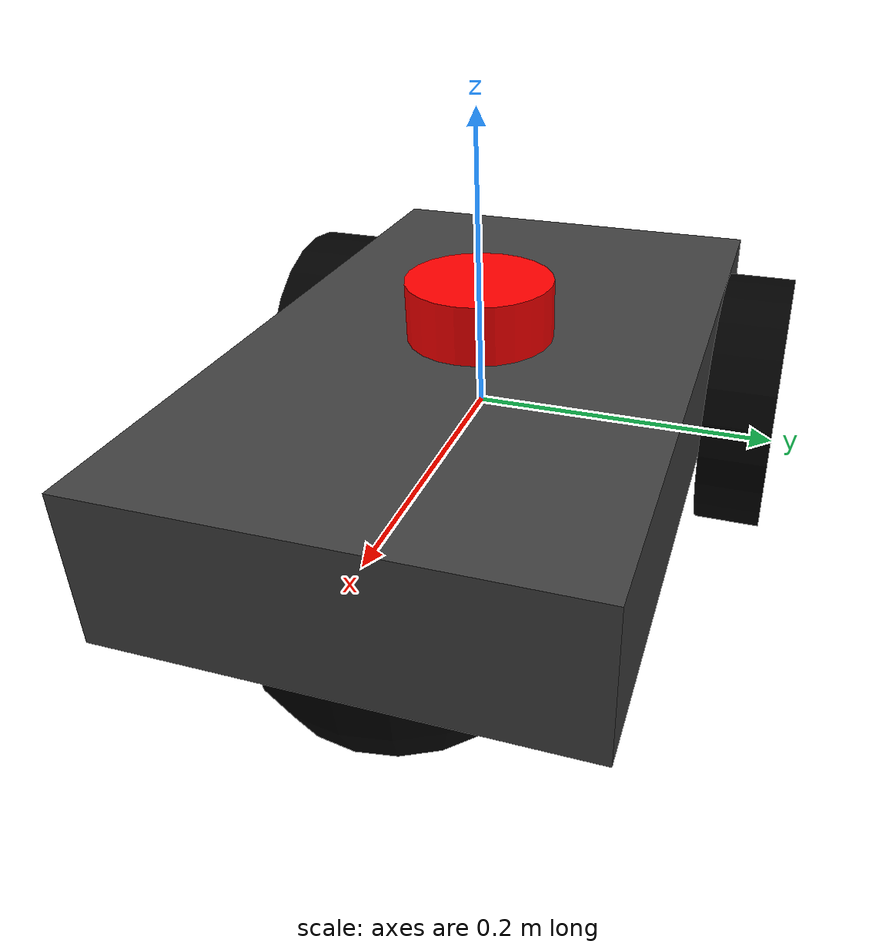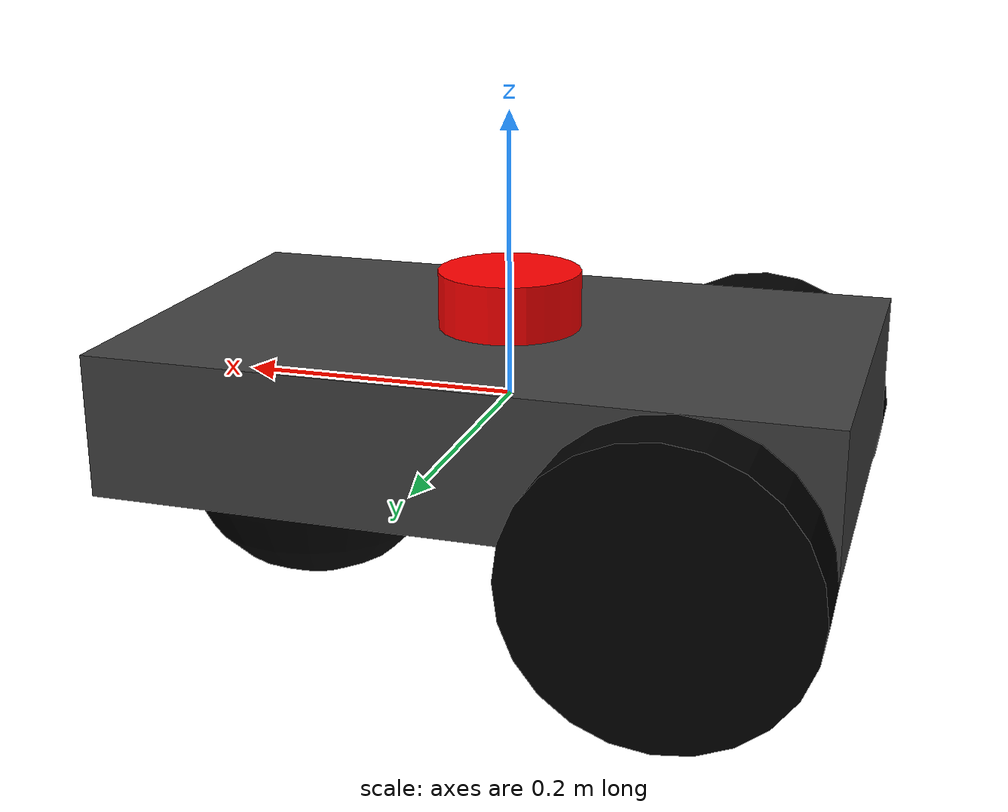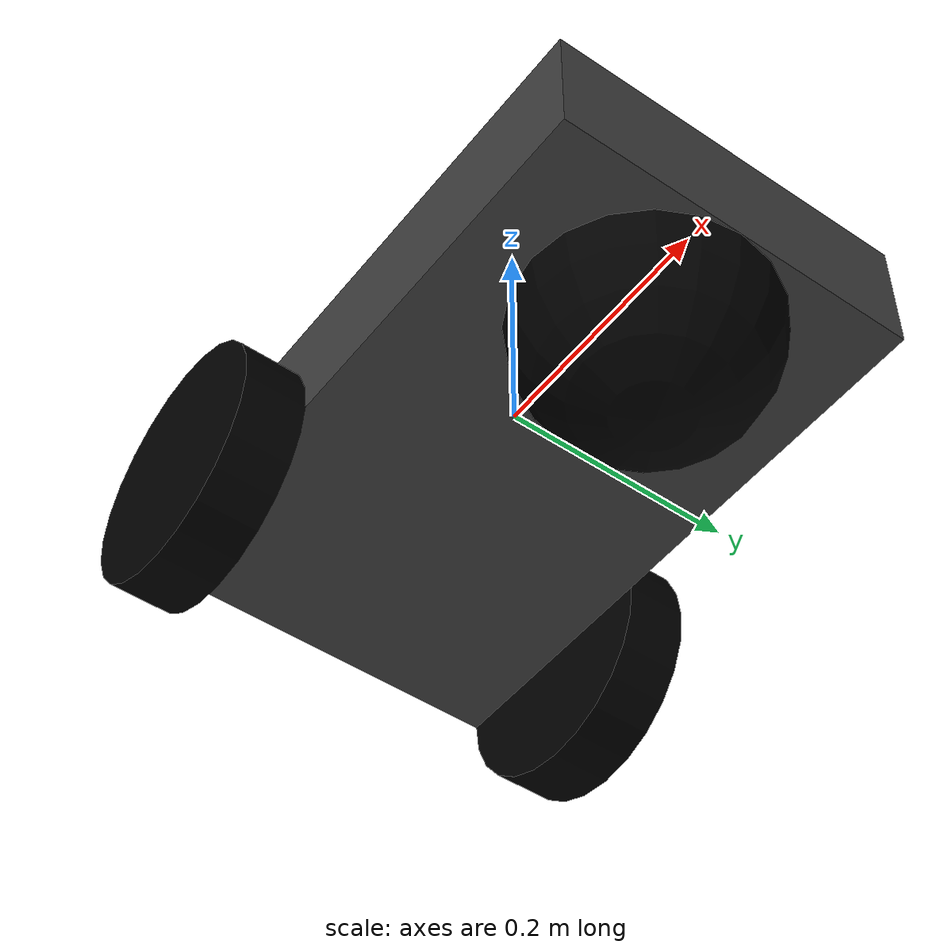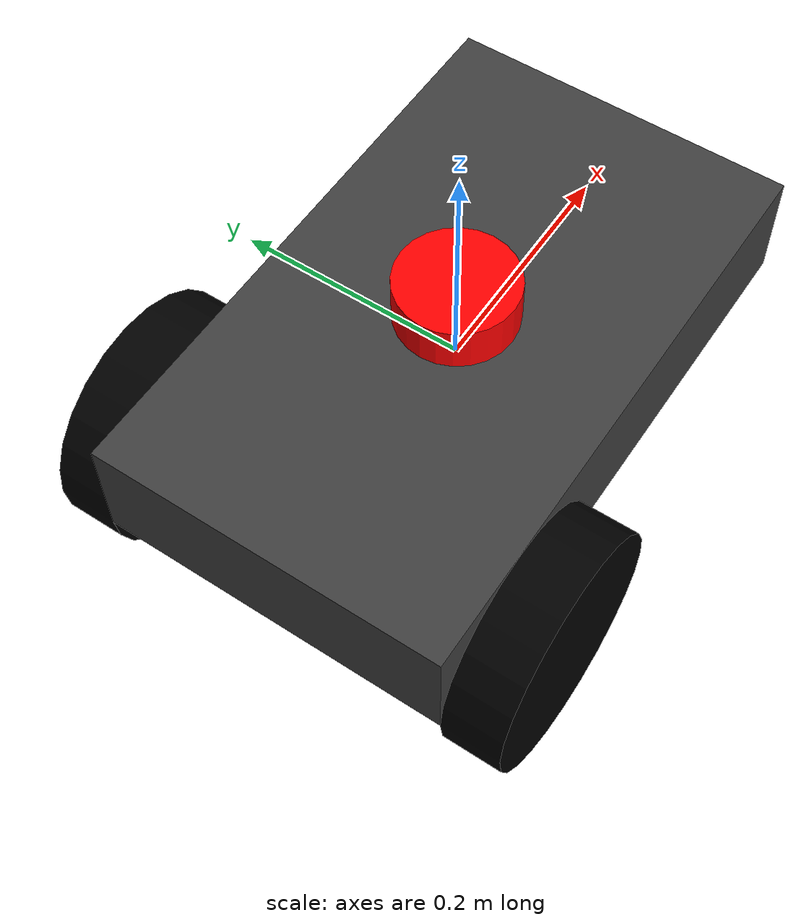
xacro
<?xml version="1.0"?>
<robot name="differential_drive_robot" xmlns:xacro="http://www.ros.org/wiki/xacro">

    <xacro:property name="PI" value="3.14159265"/>
    <xacro:property name="body_length" value="0.5"/>
    <xacro:property name="body_width" value="0.3"/>
    <xacro:property name="body_height" value="0.1"/>
    <xacro:property name="body_density" value="7850.0"/>
    <xacro:property name="body_mass" value="${body_density * body_length * body_height * body_width}"/>
    <xacro:property name="body_inertia_x" value="${1.0/12.0 * body_mass * (body_height*body_height + body_width*body_width)}"/>
    <xacro:property name="body_inertia_y" value="${1.0/12.0 * body_mass * (body_length*body_length + body_height*body_height)}"/>
    <xacro:property name="body_inertia_z" value="${1.0/12.0 * body_mass * (body_length*body_length + body_width*body_width)}"/>

    <xacro:property name="wheel_radius" value="0.1"/>
    <xacro:property name="wheel_width" value="0.05"/>
    <xacro:property name="wheel_separation" value="${body_width + wheel_width}"/>
    <xacro:property name="wheel_offset" value="${body_length/2 - wheel_radius}"/>
    <xacro:property name="wheel_density" value="900"/>
    <xacro:property name="wheel_mass" value="${wheel_density * PI * wheel_radius * wheel_radius * wheel_width}"/>
    <xacro:property name="wheel_inertia_x" value="${1.0/12.0 * wheel_mass * (3*wheel_radius*wheel_radius + wheel_width*wheel_width)}"/>
    <xacro:property name="wheel_inertia_y" value="${1.0/12.0 * wheel_mass * (3*wheel_radius*wheel_radius + wheel_width*wheel_width)}"/>
    <xacro:property name="wheel_inertia_z" value="${1.0/2.0 * wheel_mass * wheel_radius * wheel_radius}"/>

    <xacro:property name="caster_radius" value="0.1"/>
    <xacro:property name="caster_offset" value="${body_length/2 - caster_radius}"/>
    <xacro:property name="caster_density" value="0.1"/>
    <xacro:property name="caster_mass" value="${caster_density * 4.0/3.0 * PI * caster_radius * caster_radius * caster_radius}"/>
    <xacro:property name="caster_inertia_x" value="${2.0/5.0 * caster_mass * caster_radius * caster_radius}"/>
    <xacro:property name="caster_inertia_y" value="${2.0/5.0 * caster_mass * caster_radius * caster_radius}"/>
    <xacro:property name="caster_inertia_z" value="${2.0/5.0 * caster_mass * caster_radius * caster_radius}"/>

    <xacro:property name="max_linear_acceleration" value="10"/>

    <link name="base_footprint"/>
    <link name="base_link"/>

    <joint name="footprint_to_link" type="fixed">
        <parent link="base_footprint"/>
        <child link="base_link"/>
        <origin xyz="0 0 0" rpy="0 0 0"/>
    </joint>

    <joint name="base_joint" type="fixed">
        <parent link="base_link"/>
        <child link="body_link"/>
        <origin xyz="0 0 0" rpy="0 0 0"/>
    </joint>
    <link name="body_link">
        <visual>
            <origin xyz="0.0 0.0 0.0" rpy="0.0 0.0 0.0"/>
            <geometry>
                <box size="${body_length} ${body_width} ${body_height}"/>
            </geometry>
            <material name="body_material">
                <color rgba="0.25 0.25 0.25 1.0"/>
            </material>
        </visual>
        <collision>
            <origin xyz="0.0 0.0 0.0" rpy="0.0 0.0 0.0"/>
            <geometry>
                <box size="${body_length} ${body_width} ${body_height}"/>
            </geometry>
        </collision>
        <inertial>
            <mass value="10"/>
            <inertia ixx="${body_inertia_x}" ixy="0.0" ixz="0.0" iyy="${body_inertia_y}" iyz="0" izz="${body_inertia_z}"/>
            <origin xyz="0 0 0" rpy="0 0 0"/>
        </inertial>
    </link>

    <link name="left_wheel_link">
        <visual>
            <origin xyz="0.0 0.0 0.0" rpy="1.570795 0.0 0.0"/>
            <geometry>
                <cylinder radius="${wheel_radius}" length="${wheel_width}"/>
            </geometry>
            <material name="wheel_material">
                <color rgba="0.0 0.0 0.0 1.0"/>
            </material>
        </visual>
        <collision>
            <origin xyz="0.0 0.0 0.0" rpy="1.570795 0.0 0.0"/>
            <geometry>
                <cylinder radius="${wheel_radius}" length="${wheel_width}"/>
            </geometry>
        </collision>
        <inertial>
            <mass value="2"/>
            <inertia ixx="${wheel_inertia_x}" ixy="0.0" ixz="0.0" iyy="${wheel_inertia_y}" iyz="0" izz="${wheel_inertia_z}"/>
            <origin xyz="0.0 0.0 0.0" rpy="1.570795 0.0 0.0"/>
        </inertial>
    </link>

    <link name="right_wheel_link">
        <visual>
            <origin xyz="0.0 0.0 0.0" rpy="1.570795 0.0 0.0"/>
            <geometry>
                <cylinder radius="${wheel_radius}" length="${wheel_width}"/>
            </geometry>
            <material name="wheel_material">
                <color rgba="0.0 0.0 0.0 1.0"/>
            </material>
        </visual>
        <collision>
            <origin xyz="0.0 0.0 0.0" rpy="1.570795 0.0 0.0"/>
            <geometry>
                <cylinder radius="${wheel_radius}" length="${wheel_width}"/>
            </geometry>
        </collision>
        <inertial>
            <mass value="2"/>
            <inertia ixx="${wheel_inertia_x}" ixy="0.0" ixz="0.0" iyy="${wheel_inertia_y}" iyz="0" izz="${wheel_inertia_z}"/>
            <origin xyz="0.0 0.0 0.0" rpy="1.570795 0.0 0.0"/>
        </inertial>
    </link>

    <link name="caster_link">
        <visual>
            <origin xyz="0.0 0.0 0.0" rpy="0.0 0.0 0.0"/>
            <geometry>
                <sphere radius="${caster_radius}"/>
            </geometry>
            <material name="caster_material">
                <color rgba="0.0 0.0 0.0 1.0"/>
            </material>
        </visual>
        <collision>
            <origin xyz="0.0 0.0 0.0" rpy="0.0 0.0 0.0"/>
            <geometry>
                <sphere radius="${caster_radius}"/>
            </geometry>
        </collision>
        <inertial>
            <mass value="0.5"/>
            <inertia ixx="${caster_inertia_x}" ixy="0.0" ixz="0.0" iyy="${caster_inertia_y}" iyz="0" izz="${caster_inertia_z}"/>
            <origin xyz="0 0 0" rpy="0 0 0"/>
        </inertial>
    </link>

    <link name="laser_link">
        <visual>
            <origin xyz="0 0 0" rpy="0 0 0"/>
            <geometry>
                <cylinder radius="0.05" length="0.04"/>
            </geometry>
            <material name="laser_material">
                <color rgba="1.0 0.0 0.0 1.0"/>
            </material>
        </visual>
        <collision>
            <origin xyz="0 0 0" rpy="0 0 0"/>
            <geometry>
                <cylinder radius="0.05" length="0.04"/>
            </geometry>
        </collision>
        <inertial>
            <mass value="0.1"/>
            <inertia ixx="0.0001" ixy="0" ixz="0" iyy="0.0001" iyz="0" izz="0.0001"/>
            <origin xyz="0 0 0" rpy="0 0 0"/>
        </inertial>
    </link>

    <joint name="left_wheel_joint" type="continuous">
        <origin xyz="-${wheel_offset} ${wheel_separation/2} -${wheel_radius/2}" rpy="0 0 0"/>
        <parent link="body_link"/>
        <child link="left_wheel_link"/>
        <axis xyz="0 1 0"/>
        <limit effort="100" velocity="10.0"/>
        <dynamics damping="0.1" friction="0.1"/>
    </joint>

    <joint name="right_wheel_joint" type="continuous">
        <origin xyz="-${wheel_offset} ${-wheel_separation/2} -${wheel_radius/2}" rpy="0 0 0"/>
        <parent link="body_link"/>
        <child link="right_wheel_link"/>
        <axis xyz="0 1 0"/>
        <limit effort="100" velocity="10.0"/>
        <dynamics damping="0.1" friction="0.1"/>
    </joint>

    <joint name="caster_joint" type="fixed">
        <origin xyz="${caster_offset} 0 -${caster_radius/2}" rpy="0 0 0"/>
        <parent link="body_link"/>
        <child link="caster_link"/>
    </joint>

    <joint name="laser_joint" type="fixed">
        <origin xyz="0 0 ${body_height/2 + 0.02}" rpy="0 0 0"/>
        <parent link="body_link"/>
        <child link="laser_link"/>
    </joint>

    <gazebo reference="body_link">
        <mu1>1.0</mu1>
        <mu2>1.0</mu2>
        <material>
            <ambient>0.25 0.25 0.25 1.0</ambient>
            <diffuse>0.25 0.25 0.25 1.0</diffuse>
        </material>
    </gazebo>

    <gazebo reference="right_wheel_link">
        <mu1>1.0</mu1>
        <mu2>1.0</mu2>
        <material>
            <ambient>0.0 0.0 0.0 1.0</ambient>
            <diffuse>0.0 0.0 0.0 1.0</diffuse>
        </material>
    </gazebo>

    <gazebo reference="left_wheel_link">
        <mu1>1.0</mu1>
        <mu2>1.0</mu2>
        <material>
            <ambient>0.0 0.0 0.0 1.0</ambient>
            <diffuse>0.0 0.0 0.0 1.0</diffuse>
        </material>
    </gazebo>

    <gazebo reference="caster_link">
        <mu1>0.000001</mu1>
        <mu2>0.000001</mu2>
        <material>
            <ambient>0.0 0.0 0.0 1.0</ambient>
            <diffuse>0.0 0.0 0.0 1.0</diffuse>
        </material>
    </gazebo>

    <gazebo reference="laser_link">
        <material>
            <ambient>1.0 0.0 0.0 1.0</ambient>
            <diffuse>1.0 0.0 0.0 1.0</diffuse>
        </material>
        <sensor name="lidar" type="gpu_lidar">
            <pose>0 0 0 0 0 0</pose>
            <topic>/scan</topic>
            <gz_frame_id>laser_link</gz_frame_id>
            <update_rate>10</update_rate>
            <ray>
                <scan>
                    <horizontal>
                        <samples>360</samples>
                        <resolution>1</resolution>
                        <min_angle>-3.14159</min_angle>
                        <max_angle>3.14159</max_angle>
                    </horizontal>
                </scan>
                <range>
                    <min>0.12</min>
                    <max>10.0</max>
                    <resolution>0.01</resolution>
                </range>
            </ray>
            <always_on>true</always_on>
            <visualize>true</visualize>
        </sensor>
    </gazebo>

    <gazebo>
        <plugin filename="gz-sim-diff-drive-system" name="gz::sim::systems::DiffDrive">
            <right_joint>right_wheel_joint</right_joint>
            <left_joint>left_wheel_joint</left_joint>
            <wheel_separation>${wheel_separation}</wheel_separation>
            <wheel_radius>${wheel_radius}</wheel_radius>
            <max_linear_acceleration>${max_linear_acceleration}</max_linear_acceleration>
            <odom_publish_frequency>100</odom_publish_frequency>
            <topic>/cmd_vel</topic>
            <odom_topic>/odom</odom_topic>

            <frame_id>odom</frame_id>
            <child_frame_id>base_footprint</child_frame_id>
            <tf_topic>/tf</tf_topic>
        </plugin>

        <plugin filename="gz-sim-joint-state-publisher-system" name="gz::sim::systems::JointStatePublisher">
            <topic>joint_states</topic>
            <joint_name>right_wheel_joint</joint_name>
            <joint_name>left_wheel_joint</joint_name>
        </plugin>

        <plugin filename="gz-sim-sensors-system" name="gz::sim::systems::Sensors">
            <render_engine>ogre2</render_engine>
        </plugin>
    </gazebo>

</robot>
